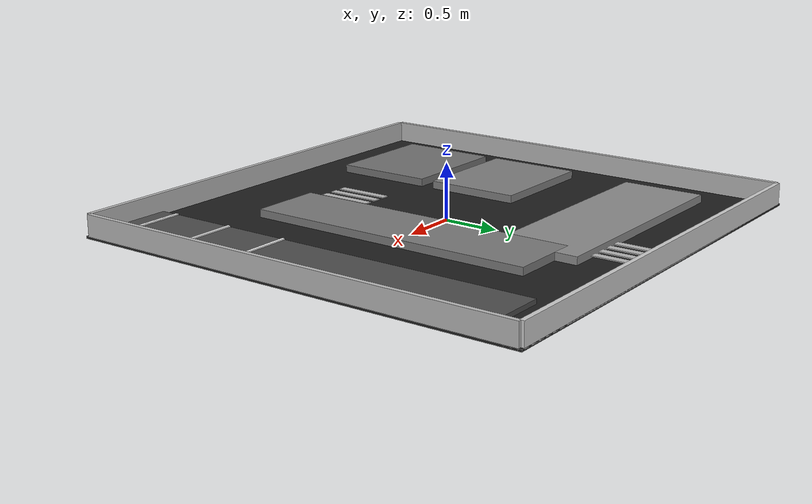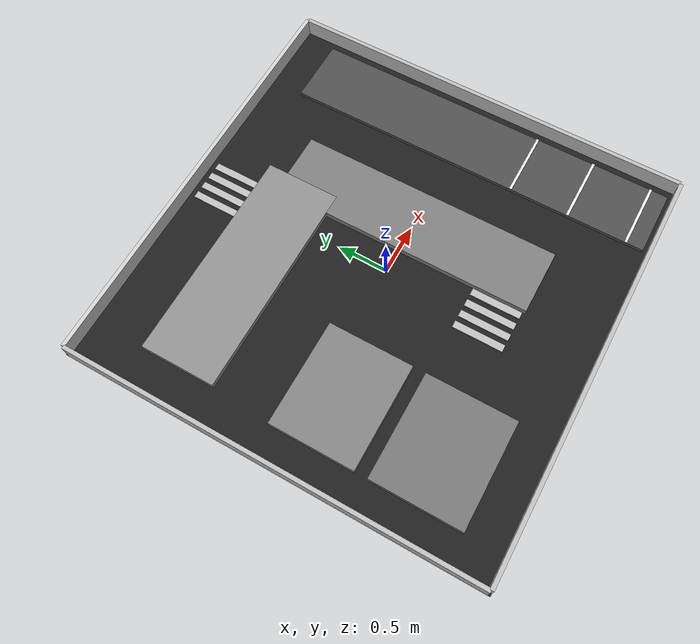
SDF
<?xml version="1.0" ?>
<sdf version="1.6">

  <world name="competition_world">

    <!-- 基础环境 -->

    <include>
      <uri>model://sun</uri>
    </include>

    <gravity>0 0 -9.8</gravity>

    <!-- 4.2m × 4.2m 地面 -->
    <model name="competition_ground">
      <static>true</static>

      <link name="link">

        <collision name="collision">
          <geometry>
            <box>
              <size>4.2 4.2 0.02</size>
            </box>
          </geometry>
        </collision>

        <visual name="visual">
          <geometry>
            <box>
              <size>4.2 4.2 0.02</size>
            </box>
          </geometry>

          <material>
            <ambient>0.12 0.12 0.12 1</ambient>
            <diffuse>0.12 0.12 0.12 1</diffuse>
          </material>

        </visual>

      </link>
    </model>

    <!-- 外围墙 -->

    <model name="north_wall">
      <static>true</static>
      <pose>0 2.08 0.10 0 0 0</pose>

      <link name="link">
        <collision name="collision">
          <geometry>
            <box>
              <size>4.15 0.04 0.20</size>
            </box>
          </geometry>
        </collision>

        <visual name="visual">
          <geometry>
            <box>
              <size>4.15 0.04 0.20</size>
            </box>
          </geometry>

          <material>
            <ambient>0.8 0.8 0.8 1</ambient>
            <diffuse>0.8 0.8 0.8 1</diffuse>
          </material>
        </visual>
      </link>
    </model>

    <model name="south_wall">
      <static>true</static>
      <pose>0 -2.08 0.10 0 0 0</pose>

      <link name="link">
        <collision name="collision">
          <geometry>
            <box>
              <size>4.15 0.04 0.20</size>
            </box>
          </geometry>
        </collision>

        <visual name="visual">
          <geometry>
            <box>
              <size>4.15 0.04 0.20</size>
            </box>
          </geometry>
        </visual>
      </link>
    </model>

    <model name="west_wall">
      <static>true</static>
      <pose>-2.08 0 0.10 0 0 0</pose>

      <link name="link">
        <collision name="collision">
          <geometry>
            <box>
              <size>0.04 4.15 0.20</size>
            </box>
          </geometry>
        </collision>

        <visual name="visual">
          <geometry>
            <box>
              <size>0.04 4.15 0.20</size>
            </box>
          </geometry>
        </visual>
      </link>
    </model>

    <model name="east_wall">
      <static>true</static>
      <pose>2.08 0 0.10 0 0 0</pose>

      <link name="link">
        <collision name="collision">
          <geometry>
            <box>
              <size>0.04 4.15 0.20</size>
            </box>
          </geometry>
        </collision>

        <visual name="visual">
          <geometry>
            <box>
              <size>0.04 4.15 0.20</size>
            </box>
          </geometry>
        </visual>
      </link>
    </model>

    <!-- 左上 A 区 -->

    <model name="area_a">
      <static>true</static>
      <pose>-0.65 1.15 0.04 0 0 0</pose>

      <link name="link">

        <collision name="collision">
          <geometry>
            <box>
              <size>2.15 0.75 0.08</size>
            </box>
          </geometry>
        </collision>

        <visual name="visual">
          <geometry>
            <box>
              <size>2.15 0.75 0.08</size>
            </box>
          </geometry>

          <material>
            <ambient>0.55 0.55 0.55 1</ambient>
            <diffuse>0.55 0.55 0.55 1</diffuse>
          </material>

        </visual>

      </link>
    </model>

    <!-- 左中 B 区 -->

    <model name="area_b">
      <static>true</static>
      <pose>-1.25 -0.25 0.04 0 0 0</pose>

      <link name="link">

        <collision name="collision">
          <geometry>
            <box>
              <size>1.05 0.85 0.08</size>
            </box>
          </geometry>
        </collision>

        <visual name="visual">
          <geometry>
            <box>
              <size>1.05 0.85 0.08</size>
            </box>
          </geometry>

          <material>
            <ambient>0.5 0.5 0.5 1</ambient>
            <diffuse>0.5 0.5 0.5 1</diffuse>
          </material>

        </visual>

      </link>
    </model>

    <!-- 左下 楼宇D/站房区域 -->

    <model name="building_d_station">
      <static>true</static>
      <pose>-1.25 -1.25 0.04 0 0 0</pose>

      <link name="link">

        <collision name="collision">
          <geometry>
            <box>
              <size>1.05 0.90 0.08</size>
            </box>
          </geometry>
        </collision>

        <visual name="visual">
          <geometry>
            <box>
              <size>1.05 0.90 0.08</size>
            </box>
          </geometry>

          <material>
            <ambient>0.45 0.45 0.45 1</ambient>
            <diffuse>0.45 0.45 0.45 1</diffuse>
          </material>

        </visual>

      </link>
    </model>

    <!-- 中央 楼宇A/B/C + 电动车区域 -->

    <model name="central_buildings">
      <static>true</static>
      <pose>0.55 0 0.04 0 0 0</pose>

      <link name="link">

        <collision name="collision">
          <geometry>
            <box>
              <size>0.65 2.65 0.08</size>
            </box>
          </geometry>
        </collision>

        <visual name="visual">
          <geometry>
            <box>
              <size>0.65 2.65 0.08</size>
            </box>
          </geometry>

          <material>
            <ambient>0.48 0.48 0.48 1</ambient>
            <diffuse>0.48 0.48 0.48 1</diffuse>
          </material>

        </visual>

      </link>
    </model>

    <!-- 右侧停车区域 -->

    <model name="parking_area">
      <static>true</static>
      <pose>1.65 -0.15 0.025 0 0 0</pose>

      <link name="link">

        <collision name="collision">
          <geometry>
            <box>
              <size>0.65 3.75 0.05</size>
            </box>
          </geometry>
        </collision>

        <visual name="visual">
          <geometry>
            <box>
              <size>0.65 3.75 0.05</size>
            </box>
          </geometry>

          <material>
            <ambient>0.3 0.3 0.3 1</ambient>
            <diffuse>0.3 0.3 0.3 1</diffuse>
          </material>

        </visual>

      </link>
    </model>

    <!-- 停车位分隔线 -->

    <model name="parking_line_1">
      <static>true</static>
      <pose>1.65 -0.65 0.055 0 0 0</pose>

      <link name="link">
        <visual name="visual">
          <geometry>
            <box>
              <size>0.65 0.025 0.01</size>
            </box>
          </geometry>

          <material>
            <ambient>1 1 1 1</ambient>
            <diffuse>1 1 1 1</diffuse>
          </material>
        </visual>
      </link>
    </model>

    <model name="parking_line_2">
      <static>true</static>
      <pose>1.65 -1.25 0.055 0 0 0</pose>

      <link name="link">
        <visual name="visual">
          <geometry>
            <box>
              <size>0.65 0.025 0.01</size>
            </box>
          </geometry>

          <material>
            <ambient>1 1 1 1</ambient>
            <diffuse>1 1 1 1</diffuse>
          </material>
        </visual>
      </link>
    </model>

    <model name="parking_line_3">
      <static>true</static>
      <pose>1.65 -1.85 0.055 0 0 0</pose>

      <link name="link">
        <visual name="visual">
          <geometry>
            <box>
              <size>0.65 0.025 0.01</size>
            </box>
          </geometry>

          <material>
            <ambient>1 1 1 1</ambient>
            <diffuse>1 1 1 1</diffuse>
          </material>
        </visual>
      </link>
    </model>

    <!-- 下方斑马线 -->

    <model name="crosswalk_bottom">

      <static>true</static>

      <link name="link">

        <visual name="stripe1">
          <pose>-0.18 0 0.03 0 0 0</pose>
          <geometry>
            <box>
              <size>0.07 0.50 0.01</size>
            </box>
          </geometry>
        </visual>

        <visual name="stripe2">
          <pose>-0.06 0 0.03 0 0 0</pose>
          <geometry>
            <box>
              <size>0.07 0.50 0.01</size>
            </box>
          </geometry>
        </visual>

        <visual name="stripe3">
          <pose>0.06 0 0.03 0 0 0</pose>
          <geometry>
            <box>
              <size>0.07 0.50 0.01</size>
            </box>
          </geometry>
        </visual>

        <visual name="stripe4">
          <pose>0.18 0 0.03 0 0 0</pose>
          <geometry>
            <box>
              <size>0.07 0.50 0.01</size>
            </box>
          </geometry>
        </visual>

      </link>

      <pose>0 -1.05 0 0 0 0</pose>

    </model>

    <!-- 上方斑马线 -->

    <model name="crosswalk_top">

      <static>true</static>

      <link name="link">

        <visual name="stripe1">
          <pose>-0.18 0 0.03 0 0 0</pose>
          <geometry>
            <box>
              <size>0.07 0.50 0.01</size>
            </box>
          </geometry>
        </visual>

        <visual name="stripe2">
          <pose>-0.06 0 0.03 0 0 0</pose>
          <geometry>
            <box>
              <size>0.07 0.50 0.01</size>
            </box>
          </geometry>
        </visual>

        <visual name="stripe3">
          <pose>0.06 0 0.03 0 0 0</pose>
          <geometry>
            <box>
              <size>0.07 0.50 0.01</size>
            </box>
          </geometry>
        </visual>

        <visual name="stripe4">
          <pose>0.18 0 0.03 0 0 0</pose>
          <geometry>
            <box>
              <size>0.07 0.50 0.01</size>
            </box>
          </geometry>
        </visual>

      </link>

      <pose>0 1.75 0 0 0 0</pose>

    </model>

  </world>

</sdf>
